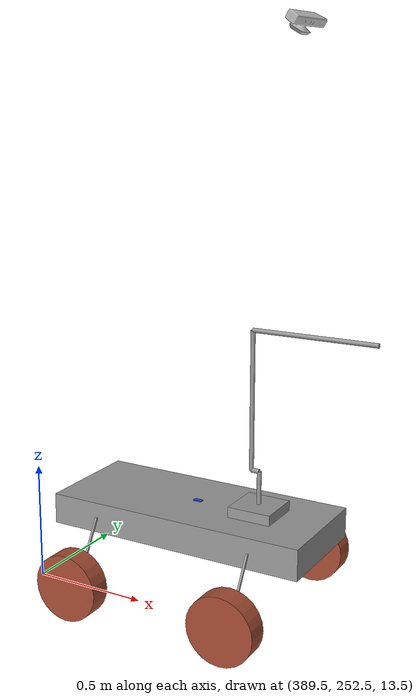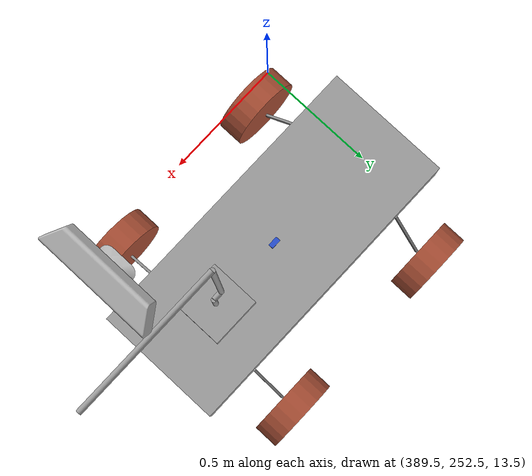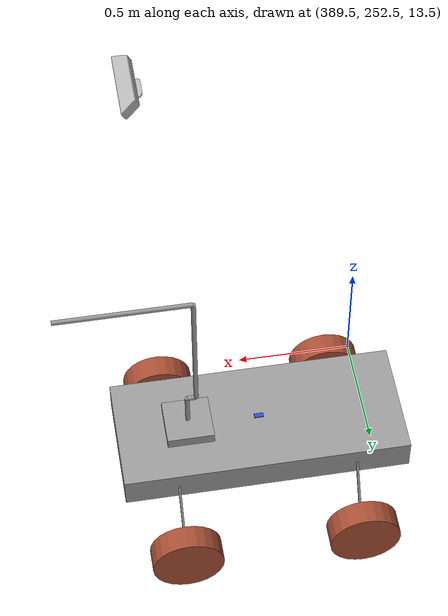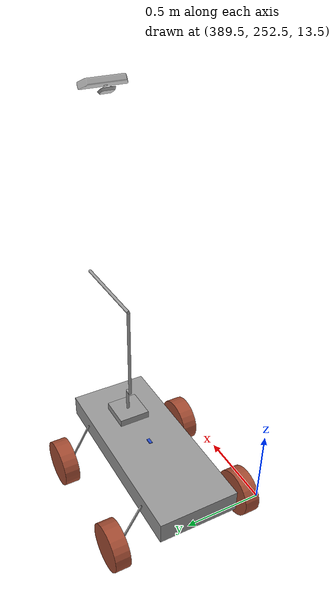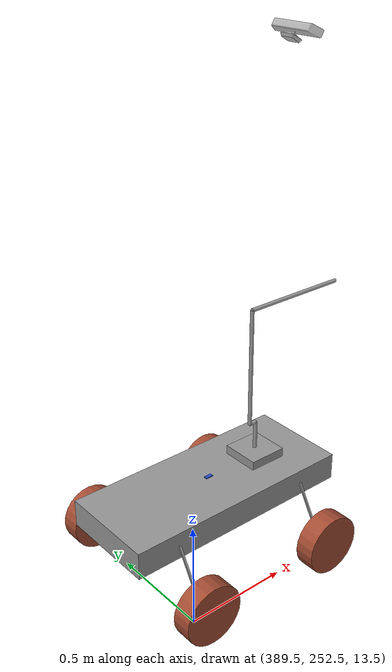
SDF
<sdf version="1.6">
 <world name="maze_simple">
  <gravity>0 0 -9.8</gravity>
  <magnetic_field>6e-06 2.3e-05 -4.2e-05</magnetic_field>
  <atmosphere type="adiabatic"/>
  <physics type="ode">
   <max_step_size>0.002</max_step_size>
   <real_time_update_rate>500</real_time_update_rate>
   <ode>
    <solver><type>quick</type><iters>50</iters><precon_iters>0</precon_iters><sor>1.300000</sor></solver>
    <constraints>
     <cfm>0.000000</cfm>
     <erp>0.200000</erp>
     <contact_max_correcting_vel>100.000000</contact_max_correcting_vel>
     <contact_surface_layer>0.001000</contact_surface_layer>
    </constraints>
   </ode>
  </physics>
  <scene><ambient>1 1 1 1</ambient><background>0.7 0.7 0.7 1</background><shadows>1</shadows></scene>
  <spherical_coordinates>
   <surface_model>EARTH_WGS84</surface_model>
   <latitude_deg>38.403665</latitude_deg>
   <longitude_deg>-110.796787</longitude_deg>
   <elevation>1394.35</elevation>
   <heading_deg>180</heading_deg>
  </spherical_coordinates>
  <include><uri>model://sun</uri><pose>0 0 500   0 0 0</pose></include>
  <include><uri>model://Robot_Base</uri><name>rover</name><pose>390 253 12.7  0 0 -1.5707</pose></include>
  <plugin name="FixFrictionNode" filename="libFixFrictionNode.so"/>
 </world>
</sdf>
